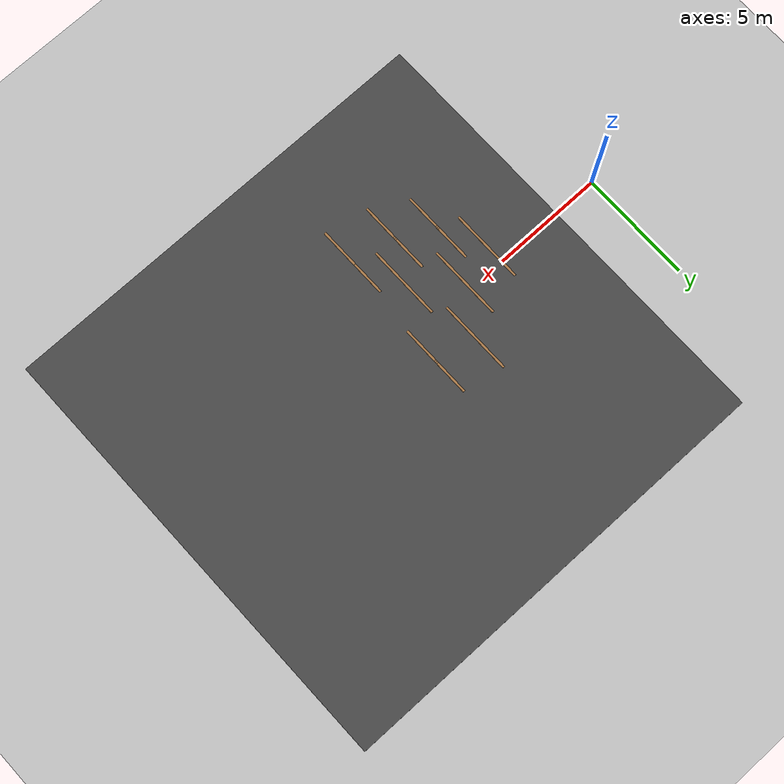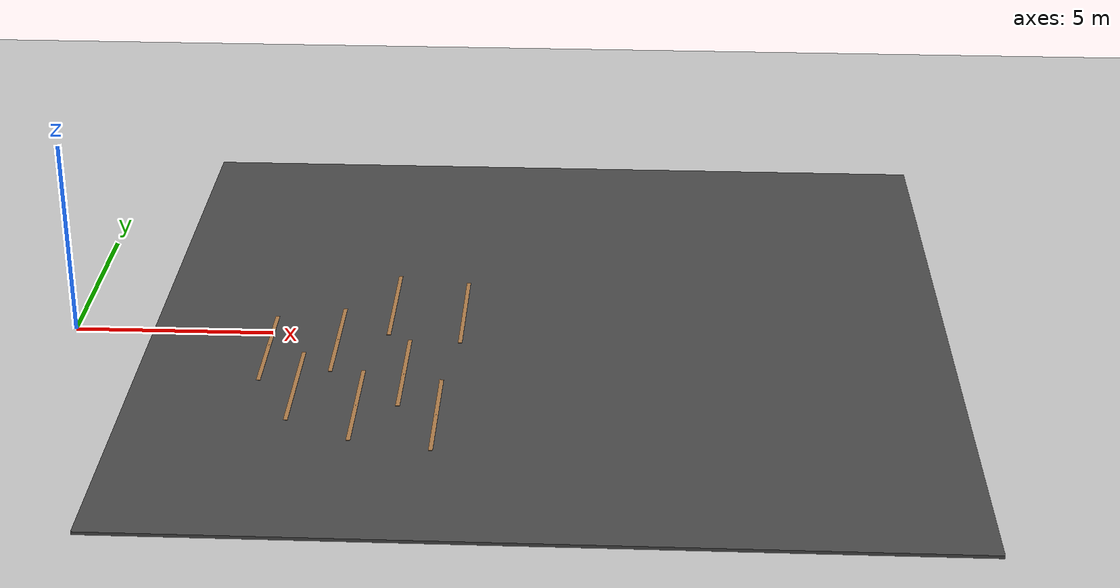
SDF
<sdf version="1.7">
 <world name="default">
  <model name="ground_plane">
   <static>1</static>
   <link name="link">
    <collision name="collision">
     <geometry><plane><normal>0 0 1</normal><size>100 100</size></plane></geometry>
     <surface><friction><ode><mu>100</mu><mu2>50</mu2></ode></friction></surface>
    </collision>
    <visual name="visual">
     <cast_shadows>0</cast_shadows>
     <geometry><plane><normal>0 0 1</normal><size>100 100</size></plane></geometry>
     <material>
      <script><uri>file://media/materials/scripts/gazebo.material</uri><name>Gazebo/Grey</name></script>
     </material>
    </visual>
   </link>
  </model>
  <model name="asphalt_plane">
   <static>1</static>
   <link name="link">
    <collision name="collision"><geometry><box><size>20 20 0.1</size></box></geometry></collision>
    <visual name="visual">
     <cast_shadows>0</cast_shadows>
     <geometry><box><size>20 20 0.1</size></box></geometry>
     <material>
      <script>
       <uri>model://asphalt_plane/materials/scripts</uri>
       <uri>model://asphalt_plane/materials/textures</uri>
       <name>vrc/asphalt</name>
      </script>
     </material>
    </visual>
   </link>
   <pose>11.9878 0.594036 0 0 -0 0</pose>
  </model>
  <model name="wooden_board33">
   <link name="base">
    <pose>-0 -0 0.00523 0 -0 0</pose>
    <inertial>
     <mass>0.2765</mass>
     <inertia>
      <ixx>0.0025148</ixx>
      <ixy>0</ixy>
      <ixz>0</ixz>
      <iyy>0.00024037</iyy>
      <iyz>0</iyz>
      <izz>0.00275013</izz>
     </inertia>
    </inertial>
    <visual name="visual">
     <geometry><box><size>0.1016 3.3302 0.02046</size></box></geometry>
     <material>
      <script><uri>file://media/materials/scripts/gazebo.material</uri><name>Gazebo/Wood</name></script>
      <shader type="pixel"><normal_map>__default__</normal_map></shader>
      <ambient>1 1 1 1</ambient>
      <diffuse>1 1 1 1</diffuse>
      <specular>0.2 0.2 0.2 1</specular>
      <emissive>0 0 0 1</emissive>
     </material>
    </visual>
    <visual name="tee_nut_1">
     <pose>0 -0.116 0 0 -0 0</pose>
     <geometry><cylinder><radius>0.00635</radius><length>0.020565</length></cylinder></geometry>
     <material>
      <script><uri>file://media/materials/scripts/gazebo.material</uri><name>Gazebo/Grey</name></script>
      <shader type="pixel"><normal_map>__default__</normal_map></shader>
      <ambient>0.3 0.3 0.3 1</ambient>
      <diffuse>0.7 0.7 0.7 1</diffuse>
      <specular>0.01 0.01 0.01 1</specular>
      <emissive>0 0 0 1</emissive>
     </material>
    </visual>
    <visual name="tee_nut_3">
     <pose>0 0.038 0 0 -0 0</pose>
     <geometry><cylinder><radius>0.00635</radius><length>0.020565</length></cylinder></geometry>
     <material>
      <script><uri>file://media/materials/scripts/gazebo.material</uri><name>Gazebo/Grey</name></script>
      <shader type="pixel"><normal_map>__default__</normal_map></shader>
      <ambient>0.3 0.3 0.3 1</ambient>
      <diffuse>0.7 0.7 0.7 1</diffuse>
      <specular>0.01 0.01 0.01 1</specular>
      <emissive>0 0 0 1</emissive>
     </material>
    </visual>
    <visual name="tee_nut_2">
     <pose>0 -0.038 0 0 -0 0</pose>
     <geometry><cylinder><radius>0.00635</radius><length>0.020565</length></cylinder></geometry>
     <material>
      <script><uri>file://media/materials/scripts/gazebo.material</uri><name>Gazebo/Grey</name></script>
      <shader type="pixel"><normal_map>__default__</normal_map></shader>
      <ambient>0.3 0.3 0.3 1</ambient>
      <diffuse>0.7 0.7 0.7 1</diffuse>
      <specular>0.01 0.01 0.01 1</specular>
      <emissive>0 0 0 1</emissive>
     </material>
    </visual>
    <visual name="tee_nut_4">
     <pose>0 0.116 0 0 -0 0</pose>
     <geometry><cylinder><radius>0.00635</radius><length>0.020565</length></cylinder></geometry>
     <material>
      <script><uri>file://media/materials/scripts/gazebo.material</uri><name>Gazebo/Grey</name></script>
      <shader type="pixel"><normal_map>__default__</normal_map></shader>
      <ambient>0.3 0.3 0.3 1</ambient>
      <diffuse>0.7 0.7 0.7 1</diffuse>
      <specular>0.01 0.01 0.01 1</specular>
      <emissive>0 0 0 1</emissive>
     </material>
    </visual>
    <collision name="collision">
     <geometry><box><size>0.1016 0.3302 0.01046</size></box></geometry>
     <surface>
      <friction>
       <ode><mu>1</mu><mu2>1</mu2><fdir1>0 0 0</fdir1><slip1>0</slip1><slip2>0</slip2></ode>
       <torsional>
        <coefficient>1</coefficient>
        <patch_radius>0</patch_radius>
        <surface_radius>0.01</surface_radius>
        <use_patch_radius>0</use_patch_radius>
        <ode><slip>0</slip></ode>
       </torsional>
      </friction>
      <bounce><restitution_coefficient>0</restitution_coefficient><threshold>1e+06</threshold></bounce>
      <contact>
       <collide_without_contact>0</collide_without_contact>
       <collide_without_contact_bitmask>1</collide_without_contact_bitmask>
       <collide_bitmask>1</collide_bitmask>
       <ode>
        <soft_cfm>0</soft_cfm>
        <soft_erp>0.2</soft_erp>
        <kp>100000</kp>
        <kd>100</kd>
        <max_vel>100</max_vel>
        <min_depth>0.001</min_depth>
       </ode>
       <bullet>
        <split_impulse>1</split_impulse>
        <split_impulse_penetration_threshold>-0.01</split_impulse_penetration_threshold>
        <soft_cfm>0</soft_cfm>
        <soft_erp>0.2</soft_erp>
        <kp>100000</kp>
        <kd>100</kd>
       </bullet>
      </contact>
     </surface>
    </collision>
   </link>
   <static>0</static>
   <pose>5.01467 -0.882874 0.048993 0 -0 6e-05</pose>
  </model>
  <model name="wooden_board33_1">
   <link name="base">
    <pose>-0 -0 0.00523 0 -0 0</pose>
    <inertial>
     <mass>0.2765</mass>
     <inertia>
      <ixx>0.0025148</ixx>
      <ixy>0</ixy>
      <ixz>0</ixz>
      <iyy>0.00024037</iyy>
      <iyz>0</iyz>
      <izz>0.00275013</izz>
     </inertia>
    </inertial>
    <visual name="visual">
     <geometry><box><size>0.1016 3.3302 0.02046</size></box></geometry>
     <material>
      <script><uri>file://media/materials/scripts/gazebo.material</uri><name>Gazebo/Wood</name></script>
      <shader type="pixel"><normal_map>__default__</normal_map></shader>
      <ambient>1 1 1 1</ambient>
      <diffuse>1 1 1 1</diffuse>
      <specular>0.2 0.2 0.2 1</specular>
      <emissive>0 0 0 1</emissive>
     </material>
    </visual>
    <visual name="tee_nut_1">
     <pose>0 -0.116 0 0 -0 0</pose>
     <geometry><cylinder><radius>0.00635</radius><length>0.020565</length></cylinder></geometry>
     <material>
      <script><uri>file://media/materials/scripts/gazebo.material</uri><name>Gazebo/Grey</name></script>
      <shader type="pixel"><normal_map>__default__</normal_map></shader>
      <ambient>0.3 0.3 0.3 1</ambient>
      <diffuse>0.7 0.7 0.7 1</diffuse>
      <specular>0.01 0.01 0.01 1</specular>
      <emissive>0 0 0 1</emissive>
     </material>
    </visual>
    <visual name="tee_nut_3">
     <pose>0 0.038 0 0 -0 0</pose>
     <geometry><cylinder><radius>0.00635</radius><length>0.020565</length></cylinder></geometry>
     <material>
      <script><uri>file://media/materials/scripts/gazebo.material</uri><name>Gazebo/Grey</name></script>
      <shader type="pixel"><normal_map>__default__</normal_map></shader>
      <ambient>0.3 0.3 0.3 1</ambient>
      <diffuse>0.7 0.7 0.7 1</diffuse>
      <specular>0.01 0.01 0.01 1</specular>
      <emissive>0 0 0 1</emissive>
     </material>
    </visual>
    <visual name="tee_nut_2">
     <pose>0 -0.038 0 0 -0 0</pose>
     <geometry><cylinder><radius>0.00635</radius><length>0.020565</length></cylinder></geometry>
     <material>
      <script><uri>file://media/materials/scripts/gazebo.material</uri><name>Gazebo/Grey</name></script>
      <shader type="pixel"><normal_map>__default__</normal_map></shader>
      <ambient>0.3 0.3 0.3 1</ambient>
      <diffuse>0.7 0.7 0.7 1</diffuse>
      <specular>0.01 0.01 0.01 1</specular>
      <emissive>0 0 0 1</emissive>
     </material>
    </visual>
    <visual name="tee_nut_4">
     <pose>0 0.116 0 0 -0 0</pose>
     <geometry><cylinder><radius>0.00635</radius><length>0.020565</length></cylinder></geometry>
     <material>
      <script><uri>file://media/materials/scripts/gazebo.material</uri><name>Gazebo/Grey</name></script>
      <shader type="pixel"><normal_map>__default__</normal_map></shader>
      <ambient>0.3 0.3 0.3 1</ambient>
      <diffuse>0.7 0.7 0.7 1</diffuse>
      <specular>0.01 0.01 0.01 1</specular>
      <emissive>0 0 0 1</emissive>
     </material>
    </visual>
    <collision name="collision">
     <geometry><box><size>0.1016 0.3302 0.01046</size></box></geometry>
     <surface>
      <friction>
       <ode><mu>1</mu><mu2>1</mu2><fdir1>0 0 0</fdir1><slip1>0</slip1><slip2>0</slip2></ode>
       <torsional>
        <coefficient>1</coefficient>
        <patch_radius>0</patch_radius>
        <surface_radius>0.01</surface_radius>
        <use_patch_radius>0</use_patch_radius>
        <ode><slip>0</slip></ode>
       </torsional>
      </friction>
      <bounce><restitution_coefficient>0</restitution_coefficient><threshold>1e+06</threshold></bounce>
      <contact>
       <collide_without_contact>0</collide_without_contact>
       <collide_without_contact_bitmask>1</collide_without_contact_bitmask>
       <collide_bitmask>1</collide_bitmask>
       <ode>
        <soft_cfm>0</soft_cfm>
        <soft_erp>0.2</soft_erp>
        <kp>100000</kp>
        <kd>100</kd>
        <max_vel>100</max_vel>
        <min_depth>0.001</min_depth>
       </ode>
       <bullet>
        <split_impulse>1</split_impulse>
        <split_impulse_penetration_threshold>-0.01</split_impulse_penetration_threshold>
        <soft_cfm>0</soft_cfm>
        <soft_erp>0.2</soft_erp>
        <kp>100000</kp>
        <kd>100</kd>
       </bullet>
      </contact>
     </surface>
    </collision>
   </link>
   <static>0</static>
   <pose>5.94217 -2.76784 0.048993 0 -0 6e-05</pose>
  </model>
  <model name="wooden_board33_4">
   <link name="base">
    <pose>-0 -0 0.00523 0 -0 0</pose>
    <inertial>
     <mass>0.2765</mass>
     <inertia>
      <ixx>0.0025148</ixx>
      <ixy>0</ixy>
      <ixz>0</ixz>
      <iyy>0.00024037</iyy>
      <iyz>0</iyz>
      <izz>0.00275013</izz>
     </inertia>
    </inertial>
    <visual name="visual">
     <geometry><box><size>0.1016 3.3302 0.02046</size></box></geometry>
     <material>
      <script><uri>file://media/materials/scripts/gazebo.material</uri><name>Gazebo/Wood</name></script>
      <shader type="pixel"><normal_map>__default__</normal_map></shader>
      <ambient>1 1 1 1</ambient>
      <diffuse>1 1 1 1</diffuse>
      <specular>0.2 0.2 0.2 1</specular>
      <emissive>0 0 0 1</emissive>
     </material>
    </visual>
    <visual name="tee_nut_1">
     <pose>0 -0.116 0 0 -0 0</pose>
     <geometry><cylinder><radius>0.00635</radius><length>0.020565</length></cylinder></geometry>
     <material>
      <script><uri>file://media/materials/scripts/gazebo.material</uri><name>Gazebo/Grey</name></script>
      <shader type="pixel"><normal_map>__default__</normal_map></shader>
      <ambient>0.3 0.3 0.3 1</ambient>
      <diffuse>0.7 0.7 0.7 1</diffuse>
      <specular>0.01 0.01 0.01 1</specular>
      <emissive>0 0 0 1</emissive>
     </material>
    </visual>
    <visual name="tee_nut_3">
     <pose>0 0.038 0 0 -0 0</pose>
     <geometry><cylinder><radius>0.00635</radius><length>0.020565</length></cylinder></geometry>
     <material>
      <script><uri>file://media/materials/scripts/gazebo.material</uri><name>Gazebo/Grey</name></script>
      <shader type="pixel"><normal_map>__default__</normal_map></shader>
      <ambient>0.3 0.3 0.3 1</ambient>
      <diffuse>0.7 0.7 0.7 1</diffuse>
      <specular>0.01 0.01 0.01 1</specular>
      <emissive>0 0 0 1</emissive>
     </material>
    </visual>
    <visual name="tee_nut_2">
     <pose>0 -0.038 0 0 -0 0</pose>
     <geometry><cylinder><radius>0.00635</radius><length>0.020565</length></cylinder></geometry>
     <material>
      <script><uri>file://media/materials/scripts/gazebo.material</uri><name>Gazebo/Grey</name></script>
      <shader type="pixel"><normal_map>__default__</normal_map></shader>
      <ambient>0.3 0.3 0.3 1</ambient>
      <diffuse>0.7 0.7 0.7 1</diffuse>
      <specular>0.01 0.01 0.01 1</specular>
      <emissive>0 0 0 1</emissive>
     </material>
    </visual>
    <visual name="tee_nut_4">
     <pose>0 0.116 0 0 -0 0</pose>
     <geometry><cylinder><radius>0.00635</radius><length>0.020565</length></cylinder></geometry>
     <material>
      <script><uri>file://media/materials/scripts/gazebo.material</uri><name>Gazebo/Grey</name></script>
      <shader type="pixel"><normal_map>__default__</normal_map></shader>
      <ambient>0.3 0.3 0.3 1</ambient>
      <diffuse>0.7 0.7 0.7 1</diffuse>
      <specular>0.01 0.01 0.01 1</specular>
      <emissive>0 0 0 1</emissive>
     </material>
    </visual>
    <collision name="collision">
     <geometry><box><size>0.1016 0.3302 0.01046</size></box></geometry>
     <surface>
      <friction>
       <ode><mu>1</mu><mu2>1</mu2><fdir1>0 0 0</fdir1><slip1>0</slip1><slip2>0</slip2></ode>
       <torsional>
        <coefficient>1</coefficient>
        <patch_radius>0</patch_radius>
        <surface_radius>0.01</surface_radius>
        <use_patch_radius>0</use_patch_radius>
        <ode><slip>0</slip></ode>
       </torsional>
      </friction>
      <bounce><restitution_coefficient>0</restitution_coefficient><threshold>1e+06</threshold></bounce>
      <contact>
       <collide_without_contact>0</collide_without_contact>
       <collide_without_contact_bitmask>1</collide_without_contact_bitmask>
       <collide_bitmask>1</collide_bitmask>
       <ode>
        <soft_cfm>0</soft_cfm>
        <soft_erp>0.2</soft_erp>
        <kp>100000</kp>
        <kd>100</kd>
        <max_vel>100</max_vel>
        <min_depth>0.001</min_depth>
       </ode>
       <bullet>
        <split_impulse>1</split_impulse>
        <split_impulse_penetration_threshold>-0.01</split_impulse_penetration_threshold>
        <soft_cfm>0</soft_cfm>
        <soft_erp>0.2</soft_erp>
        <kp>100000</kp>
        <kd>100</kd>
       </bullet>
      </contact>
     </surface>
    </collision>
   </link>
   <static>0</static>
   <pose>6.70098 -0.364021 0.048993 0 -0 6e-05</pose>
  </model>
  <model name="wooden_board33_6">
   <link name="base">
    <pose>-0 -0 0.00523 0 -0 0</pose>
    <inertial>
     <mass>0.2765</mass>
     <inertia>
      <ixx>0.0025148</ixx>
      <ixy>0</ixy>
      <ixz>0</ixz>
      <iyy>0.00024037</iyy>
      <iyz>0</iyz>
      <izz>0.00275013</izz>
     </inertia>
    </inertial>
    <visual name="visual">
     <geometry><box><size>0.1016 3.3302 0.02046</size></box></geometry>
     <material>
      <script><uri>file://media/materials/scripts/gazebo.material</uri><name>Gazebo/Wood</name></script>
      <shader type="pixel"><normal_map>__default__</normal_map></shader>
      <ambient>1 1 1 1</ambient>
      <diffuse>1 1 1 1</diffuse>
      <specular>0.2 0.2 0.2 1</specular>
      <emissive>0 0 0 1</emissive>
     </material>
    </visual>
    <visual name="tee_nut_1">
     <pose>0 -0.116 0 0 -0 0</pose>
     <geometry><cylinder><radius>0.00635</radius><length>0.020565</length></cylinder></geometry>
     <material>
      <script><uri>file://media/materials/scripts/gazebo.material</uri><name>Gazebo/Grey</name></script>
      <shader type="pixel"><normal_map>__default__</normal_map></shader>
      <ambient>0.3 0.3 0.3 1</ambient>
      <diffuse>0.7 0.7 0.7 1</diffuse>
      <specular>0.01 0.01 0.01 1</specular>
      <emissive>0 0 0 1</emissive>
     </material>
    </visual>
    <visual name="tee_nut_3">
     <pose>0 0.038 0 0 -0 0</pose>
     <geometry><cylinder><radius>0.00635</radius><length>0.020565</length></cylinder></geometry>
     <material>
      <script><uri>file://media/materials/scripts/gazebo.material</uri><name>Gazebo/Grey</name></script>
      <shader type="pixel"><normal_map>__default__</normal_map></shader>
      <ambient>0.3 0.3 0.3 1</ambient>
      <diffuse>0.7 0.7 0.7 1</diffuse>
      <specular>0.01 0.01 0.01 1</specular>
      <emissive>0 0 0 1</emissive>
     </material>
    </visual>
    <visual name="tee_nut_2">
     <pose>0 -0.038 0 0 -0 0</pose>
     <geometry><cylinder><radius>0.00635</radius><length>0.020565</length></cylinder></geometry>
     <material>
      <script><uri>file://media/materials/scripts/gazebo.material</uri><name>Gazebo/Grey</name></script>
      <shader type="pixel"><normal_map>__default__</normal_map></shader>
      <ambient>0.3 0.3 0.3 1</ambient>
      <diffuse>0.7 0.7 0.7 1</diffuse>
      <specular>0.01 0.01 0.01 1</specular>
      <emissive>0 0 0 1</emissive>
     </material>
    </visual>
    <visual name="tee_nut_4">
     <pose>0 0.116 0 0 -0 0</pose>
     <geometry><cylinder><radius>0.00635</radius><length>0.020565</length></cylinder></geometry>
     <material>
      <script><uri>file://media/materials/scripts/gazebo.material</uri><name>Gazebo/Grey</name></script>
      <shader type="pixel"><normal_map>__default__</normal_map></shader>
      <ambient>0.3 0.3 0.3 1</ambient>
      <diffuse>0.7 0.7 0.7 1</diffuse>
      <specular>0.01 0.01 0.01 1</specular>
      <emissive>0 0 0 1</emissive>
     </material>
    </visual>
    <collision name="collision">
     <geometry><box><size>0.1016 0.3302 0.01046</size></box></geometry>
     <surface>
      <friction>
       <ode><mu>1</mu><mu2>1</mu2><fdir1>0 0 0</fdir1><slip1>0</slip1><slip2>0</slip2></ode>
       <torsional>
        <coefficient>1</coefficient>
        <patch_radius>0</patch_radius>
        <surface_radius>0.01</surface_radius>
        <use_patch_radius>0</use_patch_radius>
        <ode><slip>0</slip></ode>
       </torsional>
      </friction>
      <bounce><restitution_coefficient>0</restitution_coefficient><threshold>1e+06</threshold></bounce>
      <contact>
       <collide_without_contact>0</collide_without_contact>
       <collide_without_contact_bitmask>1</collide_without_contact_bitmask>
       <collide_bitmask>1</collide_bitmask>
       <ode>
        <soft_cfm>0</soft_cfm>
        <soft_erp>0.2</soft_erp>
        <kp>100000</kp>
        <kd>100</kd>
        <max_vel>100</max_vel>
        <min_depth>0.001</min_depth>
       </ode>
       <bullet>
        <split_impulse>1</split_impulse>
        <split_impulse_penetration_threshold>-0.01</split_impulse_penetration_threshold>
        <soft_cfm>0</soft_cfm>
        <soft_erp>0.2</soft_erp>
        <kp>100000</kp>
        <kd>100</kd>
       </bullet>
      </contact>
     </surface>
    </collision>
   </link>
   <static>0</static>
   <pose>7.51973 -3.63916 0.048993 0 -0 6e-05</pose>
  </model>
  <model name="wooden_board33_7">
   <link name="base">
    <pose>-0 -0 0.00523 0 -0 0</pose>
    <inertial>
     <mass>0.2765</mass>
     <inertia>
      <ixx>0.0025148</ixx>
      <ixy>0</ixy>
      <ixz>0</ixz>
      <iyy>0.00024037</iyy>
      <iyz>0</iyz>
      <izz>0.00275013</izz>
     </inertia>
    </inertial>
    <visual name="visual">
     <geometry><box><size>0.1016 3.3302 0.02046</size></box></geometry>
     <material>
      <script><uri>file://media/materials/scripts/gazebo.material</uri><name>Gazebo/Wood</name></script>
      <shader type="pixel"><normal_map>__default__</normal_map></shader>
      <ambient>1 1 1 1</ambient>
      <diffuse>1 1 1 1</diffuse>
      <specular>0.2 0.2 0.2 1</specular>
      <emissive>0 0 0 1</emissive>
     </material>
    </visual>
    <visual name="tee_nut_1">
     <pose>0 -0.116 0 0 -0 0</pose>
     <geometry><cylinder><radius>0.00635</radius><length>0.020565</length></cylinder></geometry>
     <material>
      <script><uri>file://media/materials/scripts/gazebo.material</uri><name>Gazebo/Grey</name></script>
      <shader type="pixel"><normal_map>__default__</normal_map></shader>
      <ambient>0.3 0.3 0.3 1</ambient>
      <diffuse>0.7 0.7 0.7 1</diffuse>
      <specular>0.01 0.01 0.01 1</specular>
      <emissive>0 0 0 1</emissive>
     </material>
    </visual>
    <visual name="tee_nut_3">
     <pose>0 0.038 0 0 -0 0</pose>
     <geometry><cylinder><radius>0.00635</radius><length>0.020565</length></cylinder></geometry>
     <material>
      <script><uri>file://media/materials/scripts/gazebo.material</uri><name>Gazebo/Grey</name></script>
      <shader type="pixel"><normal_map>__default__</normal_map></shader>
      <ambient>0.3 0.3 0.3 1</ambient>
      <diffuse>0.7 0.7 0.7 1</diffuse>
      <specular>0.01 0.01 0.01 1</specular>
      <emissive>0 0 0 1</emissive>
     </material>
    </visual>
    <visual name="tee_nut_2">
     <pose>0 -0.038 0 0 -0 0</pose>
     <geometry><cylinder><radius>0.00635</radius><length>0.020565</length></cylinder></geometry>
     <material>
      <script><uri>file://media/materials/scripts/gazebo.material</uri><name>Gazebo/Grey</name></script>
      <shader type="pixel"><normal_map>__default__</normal_map></shader>
      <ambient>0.3 0.3 0.3 1</ambient>
      <diffuse>0.7 0.7 0.7 1</diffuse>
      <specular>0.01 0.01 0.01 1</specular>
      <emissive>0 0 0 1</emissive>
     </material>
    </visual>
    <visual name="tee_nut_4">
     <pose>0 0.116 0 0 -0 0</pose>
     <geometry><cylinder><radius>0.00635</radius><length>0.020565</length></cylinder></geometry>
     <material>
      <script><uri>file://media/materials/scripts/gazebo.material</uri><name>Gazebo/Grey</name></script>
      <shader type="pixel"><normal_map>__default__</normal_map></shader>
      <ambient>0.3 0.3 0.3 1</ambient>
      <diffuse>0.7 0.7 0.7 1</diffuse>
      <specular>0.01 0.01 0.01 1</specular>
      <emissive>0 0 0 1</emissive>
     </material>
    </visual>
    <collision name="collision">
     <geometry><box><size>0.1016 0.3302 0.01046</size></box></geometry>
     <surface>
      <friction>
       <ode><mu>1</mu><mu2>1</mu2><fdir1>0 0 0</fdir1><slip1>0</slip1><slip2>0</slip2></ode>
       <torsional>
        <coefficient>1</coefficient>
        <patch_radius>0</patch_radius>
        <surface_radius>0.01</surface_radius>
        <use_patch_radius>0</use_patch_radius>
        <ode><slip>0</slip></ode>
       </torsional>
      </friction>
      <bounce><restitution_coefficient>0</restitution_coefficient><threshold>1e+06</threshold></bounce>
      <contact>
       <collide_without_contact>0</collide_without_contact>
       <collide_without_contact_bitmask>1</collide_without_contact_bitmask>
       <collide_bitmask>1</collide_bitmask>
       <ode>
        <soft_cfm>0</soft_cfm>
        <soft_erp>0.2</soft_erp>
        <kp>100000</kp>
        <kd>100</kd>
        <max_vel>100</max_vel>
        <min_depth>0.001</min_depth>
       </ode>
       <bullet>
        <split_impulse>1</split_impulse>
        <split_impulse_penetration_threshold>-0.01</split_impulse_penetration_threshold>
        <soft_cfm>0</soft_cfm>
        <soft_erp>0.2</soft_erp>
        <kp>100000</kp>
        <kd>100</kd>
       </bullet>
      </contact>
     </surface>
    </collision>
   </link>
   <static>0</static>
   <pose>7.94848 1.57991 0.048993 0 -0 6e-05</pose>
  </model>
  <model name="wooden_board33_9">
   <link name="base">
    <pose>-0 -0 0.00523 0 -0 0</pose>
    <inertial>
     <mass>0.2765</mass>
     <inertia>
      <ixx>0.0025148</ixx>
      <ixy>0</ixy>
      <ixz>0</ixz>
      <iyy>0.00024037</iyy>
      <iyz>0</iyz>
      <izz>0.00275013</izz>
     </inertia>
    </inertial>
    <visual name="visual">
     <geometry><box><size>0.1016 3.3302 0.02046</size></box></geometry>
     <material>
      <script><uri>file://media/materials/scripts/gazebo.material</uri><name>Gazebo/Wood</name></script>
      <shader type="pixel"><normal_map>__default__</normal_map></shader>
      <ambient>1 1 1 1</ambient>
      <diffuse>1 1 1 1</diffuse>
      <specular>0.2 0.2 0.2 1</specular>
      <emissive>0 0 0 1</emissive>
     </material>
    </visual>
    <visual name="tee_nut_1">
     <pose>0 -0.116 0 0 -0 0</pose>
     <geometry><cylinder><radius>0.00635</radius><length>0.020565</length></cylinder></geometry>
     <material>
      <script><uri>file://media/materials/scripts/gazebo.material</uri><name>Gazebo/Grey</name></script>
      <shader type="pixel"><normal_map>__default__</normal_map></shader>
      <ambient>0.3 0.3 0.3 1</ambient>
      <diffuse>0.7 0.7 0.7 1</diffuse>
      <specular>0.01 0.01 0.01 1</specular>
      <emissive>0 0 0 1</emissive>
     </material>
    </visual>
    <visual name="tee_nut_3">
     <pose>0 0.038 0 0 -0 0</pose>
     <geometry><cylinder><radius>0.00635</radius><length>0.020565</length></cylinder></geometry>
     <material>
      <script><uri>file://media/materials/scripts/gazebo.material</uri><name>Gazebo/Grey</name></script>
      <shader type="pixel"><normal_map>__default__</normal_map></shader>
      <ambient>0.3 0.3 0.3 1</ambient>
      <diffuse>0.7 0.7 0.7 1</diffuse>
      <specular>0.01 0.01 0.01 1</specular>
      <emissive>0 0 0 1</emissive>
     </material>
    </visual>
    <visual name="tee_nut_2">
     <pose>0 -0.038 0 0 -0 0</pose>
     <geometry><cylinder><radius>0.00635</radius><length>0.020565</length></cylinder></geometry>
     <material>
      <script><uri>file://media/materials/scripts/gazebo.material</uri><name>Gazebo/Grey</name></script>
      <shader type="pixel"><normal_map>__default__</normal_map></shader>
      <ambient>0.3 0.3 0.3 1</ambient>
      <diffuse>0.7 0.7 0.7 1</diffuse>
      <specular>0.01 0.01 0.01 1</specular>
      <emissive>0 0 0 1</emissive>
     </material>
    </visual>
    <visual name="tee_nut_4">
     <pose>0 0.116 0 0 -0 0</pose>
     <geometry><cylinder><radius>0.00635</radius><length>0.020565</length></cylinder></geometry>
     <material>
      <script><uri>file://media/materials/scripts/gazebo.material</uri><name>Gazebo/Grey</name></script>
      <shader type="pixel"><normal_map>__default__</normal_map></shader>
      <ambient>0.3 0.3 0.3 1</ambient>
      <diffuse>0.7 0.7 0.7 1</diffuse>
      <specular>0.01 0.01 0.01 1</specular>
      <emissive>0 0 0 1</emissive>
     </material>
    </visual>
    <collision name="collision">
     <geometry><box><size>0.1016 0.3302 0.01046</size></box></geometry>
     <surface>
      <friction>
       <ode><mu>1</mu><mu2>1</mu2><fdir1>0 0 0</fdir1><slip1>0</slip1><slip2>0</slip2></ode>
       <torsional>
        <coefficient>1</coefficient>
        <patch_radius>0</patch_radius>
        <surface_radius>0.01</surface_radius>
        <use_patch_radius>0</use_patch_radius>
        <ode><slip>0</slip></ode>
       </torsional>
      </friction>
      <bounce><restitution_coefficient>0</restitution_coefficient><threshold>1e+06</threshold></bounce>
      <contact>
       <collide_without_contact>0</collide_without_contact>
       <collide_without_contact_bitmask>1</collide_without_contact_bitmask>
       <collide_bitmask>1</collide_bitmask>
       <ode>
        <soft_cfm>0</soft_cfm>
        <soft_erp>0.2</soft_erp>
        <kp>100000</kp>
        <kd>100</kd>
        <max_vel>100</max_vel>
        <min_depth>0.001</min_depth>
       </ode>
       <bullet>
        <split_impulse>1</split_impulse>
        <split_impulse_penetration_threshold>-0.01</split_impulse_penetration_threshold>
        <soft_cfm>0</soft_cfm>
        <soft_erp>0.2</soft_erp>
        <kp>100000</kp>
        <kd>100</kd>
       </bullet>
      </contact>
     </surface>
    </collision>
   </link>
   <static>0</static>
   <pose>8.51206 -1.99109 0.048993 0 -0 6e-05</pose>
  </model>
  <model name="wooden_board33_11">
   <link name="base">
    <pose>-0 -0 0.00523 0 -0 0</pose>
    <inertial>
     <mass>0.2765</mass>
     <inertia>
      <ixx>0.0025148</ixx>
      <ixy>0</ixy>
      <ixz>0</ixz>
      <iyy>0.00024037</iyy>
      <iyz>0</iyz>
      <izz>0.00275013</izz>
     </inertia>
    </inertial>
    <visual name="visual">
     <geometry><box><size>0.1016 3.3302 0.02046</size></box></geometry>
     <material>
      <script><uri>file://media/materials/scripts/gazebo.material</uri><name>Gazebo/Wood</name></script>
      <shader type="pixel"><normal_map>__default__</normal_map></shader>
      <ambient>1 1 1 1</ambient>
      <diffuse>1 1 1 1</diffuse>
      <specular>0.2 0.2 0.2 1</specular>
      <emissive>0 0 0 1</emissive>
     </material>
    </visual>
    <visual name="tee_nut_1">
     <pose>0 -0.116 0 0 -0 0</pose>
     <geometry><cylinder><radius>0.00635</radius><length>0.020565</length></cylinder></geometry>
     <material>
      <script><uri>file://media/materials/scripts/gazebo.material</uri><name>Gazebo/Grey</name></script>
      <shader type="pixel"><normal_map>__default__</normal_map></shader>
      <ambient>0.3 0.3 0.3 1</ambient>
      <diffuse>0.7 0.7 0.7 1</diffuse>
      <specular>0.01 0.01 0.01 1</specular>
      <emissive>0 0 0 1</emissive>
     </material>
    </visual>
    <visual name="tee_nut_3">
     <pose>0 0.038 0 0 -0 0</pose>
     <geometry><cylinder><radius>0.00635</radius><length>0.020565</length></cylinder></geometry>
     <material>
      <script><uri>file://media/materials/scripts/gazebo.material</uri><name>Gazebo/Grey</name></script>
      <shader type="pixel"><normal_map>__default__</normal_map></shader>
      <ambient>0.3 0.3 0.3 1</ambient>
      <diffuse>0.7 0.7 0.7 1</diffuse>
      <specular>0.01 0.01 0.01 1</specular>
      <emissive>0 0 0 1</emissive>
     </material>
    </visual>
    <visual name="tee_nut_2">
     <pose>0 -0.038 0 0 -0 0</pose>
     <geometry><cylinder><radius>0.00635</radius><length>0.020565</length></cylinder></geometry>
     <material>
      <script><uri>file://media/materials/scripts/gazebo.material</uri><name>Gazebo/Grey</name></script>
      <shader type="pixel"><normal_map>__default__</normal_map></shader>
      <ambient>0.3 0.3 0.3 1</ambient>
      <diffuse>0.7 0.7 0.7 1</diffuse>
      <specular>0.01 0.01 0.01 1</specular>
      <emissive>0 0 0 1</emissive>
     </material>
    </visual>
    <visual name="tee_nut_4">
     <pose>0 0.116 0 0 -0 0</pose>
     <geometry><cylinder><radius>0.00635</radius><length>0.020565</length></cylinder></geometry>
     <material>
      <script><uri>file://media/materials/scripts/gazebo.material</uri><name>Gazebo/Grey</name></script>
      <shader type="pixel"><normal_map>__default__</normal_map></shader>
      <ambient>0.3 0.3 0.3 1</ambient>
      <diffuse>0.7 0.7 0.7 1</diffuse>
      <specular>0.01 0.01 0.01 1</specular>
      <emissive>0 0 0 1</emissive>
     </material>
    </visual>
    <collision name="collision">
     <geometry><box><size>0.1016 0.3302 0.01046</size></box></geometry>
     <surface>
      <friction>
       <ode><mu>1</mu><mu2>1</mu2><fdir1>0 0 0</fdir1><slip1>0</slip1><slip2>0</slip2></ode>
       <torsional>
        <coefficient>1</coefficient>
        <patch_radius>0</patch_radius>
        <surface_radius>0.01</surface_radius>
        <use_patch_radius>0</use_patch_radius>
        <ode><slip>0</slip></ode>
       </torsional>
      </friction>
      <bounce><restitution_coefficient>0</restitution_coefficient><threshold>1e+06</threshold></bounce>
      <contact>
       <collide_without_contact>0</collide_without_contact>
       <collide_without_contact_bitmask>1</collide_without_contact_bitmask>
       <collide_bitmask>1</collide_bitmask>
       <ode>
        <soft_cfm>0</soft_cfm>
        <soft_erp>0.2</soft_erp>
        <kp>100000</kp>
        <kd>100</kd>
        <max_vel>100</max_vel>
        <min_depth>0.001</min_depth>
       </ode>
       <bullet>
        <split_impulse>1</split_impulse>
        <split_impulse_penetration_threshold>-0.01</split_impulse_penetration_threshold>
        <soft_cfm>0</soft_cfm>
        <soft_erp>0.2</soft_erp>
        <kp>100000</kp>
        <kd>100</kd>
       </bullet>
      </contact>
     </surface>
    </collision>
   </link>
   <static>0</static>
   <pose>9.77271 1.24327 0.048993 0 -0 6e-05</pose>
  </model>
  <model name="wooden_board33_13">
   <link name="base">
    <pose>-0 -0 0.00523 0 -0 0</pose>
    <inertial>
     <mass>0.2765</mass>
     <inertia>
      <ixx>0.0025148</ixx>
      <ixy>0</ixy>
      <ixz>0</ixz>
      <iyy>0.00024037</iyy>
      <iyz>0</iyz>
      <izz>0.00275013</izz>
     </inertia>
    </inertial>
    <visual name="visual">
     <geometry><box><size>0.1016 3.3302 0.02046</size></box></geometry>
     <material>
      <script><uri>file://media/materials/scripts/gazebo.material</uri><name>Gazebo/Wood</name></script>
      <shader type="pixel"><normal_map>__default__</normal_map></shader>
      <ambient>1 1 1 1</ambient>
      <diffuse>1 1 1 1</diffuse>
      <specular>0.2 0.2 0.2 1</specular>
      <emissive>0 0 0 1</emissive>
     </material>
    </visual>
    <visual name="tee_nut_1">
     <pose>0 -0.116 0 0 -0 0</pose>
     <geometry><cylinder><radius>0.00635</radius><length>0.020565</length></cylinder></geometry>
     <material>
      <script><uri>file://media/materials/scripts/gazebo.material</uri><name>Gazebo/Grey</name></script>
      <shader type="pixel"><normal_map>__default__</normal_map></shader>
      <ambient>0.3 0.3 0.3 1</ambient>
      <diffuse>0.7 0.7 0.7 1</diffuse>
      <specular>0.01 0.01 0.01 1</specular>
      <emissive>0 0 0 1</emissive>
     </material>
    </visual>
    <visual name="tee_nut_3">
     <pose>0 0.038 0 0 -0 0</pose>
     <geometry><cylinder><radius>0.00635</radius><length>0.020565</length></cylinder></geometry>
     <material>
      <script><uri>file://media/materials/scripts/gazebo.material</uri><name>Gazebo/Grey</name></script>
      <shader type="pixel"><normal_map>__default__</normal_map></shader>
      <ambient>0.3 0.3 0.3 1</ambient>
      <diffuse>0.7 0.7 0.7 1</diffuse>
      <specular>0.01 0.01 0.01 1</specular>
      <emissive>0 0 0 1</emissive>
     </material>
    </visual>
    <visual name="tee_nut_2">
     <pose>0 -0.038 0 0 -0 0</pose>
     <geometry><cylinder><radius>0.00635</radius><length>0.020565</length></cylinder></geometry>
     <material>
      <script><uri>file://media/materials/scripts/gazebo.material</uri><name>Gazebo/Grey</name></script>
      <shader type="pixel"><normal_map>__default__</normal_map></shader>
      <ambient>0.3 0.3 0.3 1</ambient>
      <diffuse>0.7 0.7 0.7 1</diffuse>
      <specular>0.01 0.01 0.01 1</specular>
      <emissive>0 0 0 1</emissive>
     </material>
    </visual>
    <visual name="tee_nut_4">
     <pose>0 0.116 0 0 -0 0</pose>
     <geometry><cylinder><radius>0.00635</radius><length>0.020565</length></cylinder></geometry>
     <material>
      <script><uri>file://media/materials/scripts/gazebo.material</uri><name>Gazebo/Grey</name></script>
      <shader type="pixel"><normal_map>__default__</normal_map></shader>
      <ambient>0.3 0.3 0.3 1</ambient>
      <diffuse>0.7 0.7 0.7 1</diffuse>
      <specular>0.01 0.01 0.01 1</specular>
      <emissive>0 0 0 1</emissive>
     </material>
    </visual>
    <collision name="collision">
     <geometry><box><size>0.1016 0.3302 0.01046</size></box></geometry>
     <surface>
      <friction>
       <ode><mu>1</mu><mu2>1</mu2><fdir1>0 0 0</fdir1><slip1>0</slip1><slip2>0</slip2></ode>
       <torsional>
        <coefficient>1</coefficient>
        <patch_radius>0</patch_radius>
        <surface_radius>0.01</surface_radius>
        <use_patch_radius>0</use_patch_radius>
        <ode><slip>0</slip></ode>
       </torsional>
      </friction>
      <bounce><restitution_coefficient>0</restitution_coefficient><threshold>1e+06</threshold></bounce>
      <contact>
       <collide_without_contact>0</collide_without_contact>
       <collide_without_contact_bitmask>1</collide_without_contact_bitmask>
       <collide_bitmask>1</collide_bitmask>
       <ode>
        <soft_cfm>0</soft_cfm>
        <soft_erp>0.2</soft_erp>
        <kp>100000</kp>
        <kd>100</kd>
        <max_vel>100</max_vel>
        <min_depth>0.001</min_depth>
       </ode>
       <bullet>
        <split_impulse>1</split_impulse>
        <split_impulse_penetration_threshold>-0.01</split_impulse_penetration_threshold>
        <soft_cfm>0</soft_cfm>
        <soft_erp>0.2</soft_erp>
        <kp>100000</kp>
        <kd>100</kd>
       </bullet>
      </contact>
     </surface>
    </collision>
   </link>
   <static>0</static>
   <pose>9.46138 -3.9984 0.048993 0 -0 6e-05</pose>
  </model>
 </world>
</sdf>
